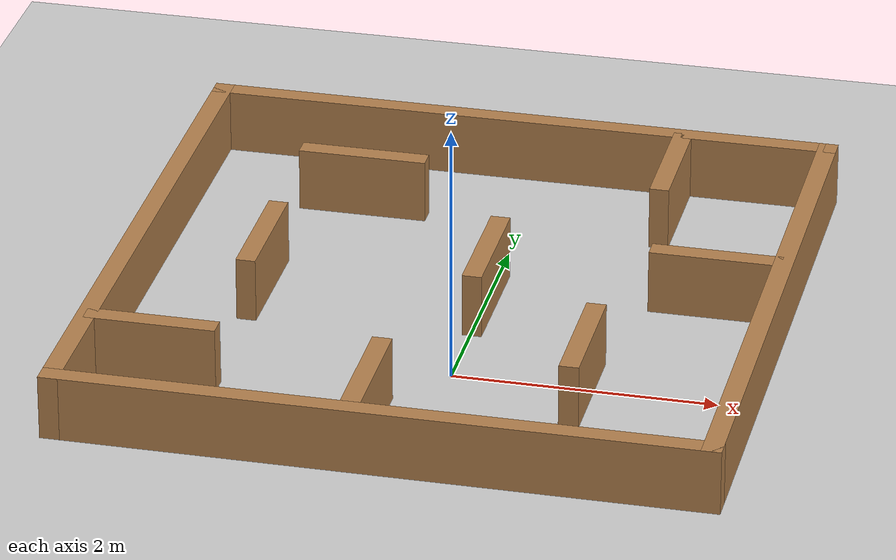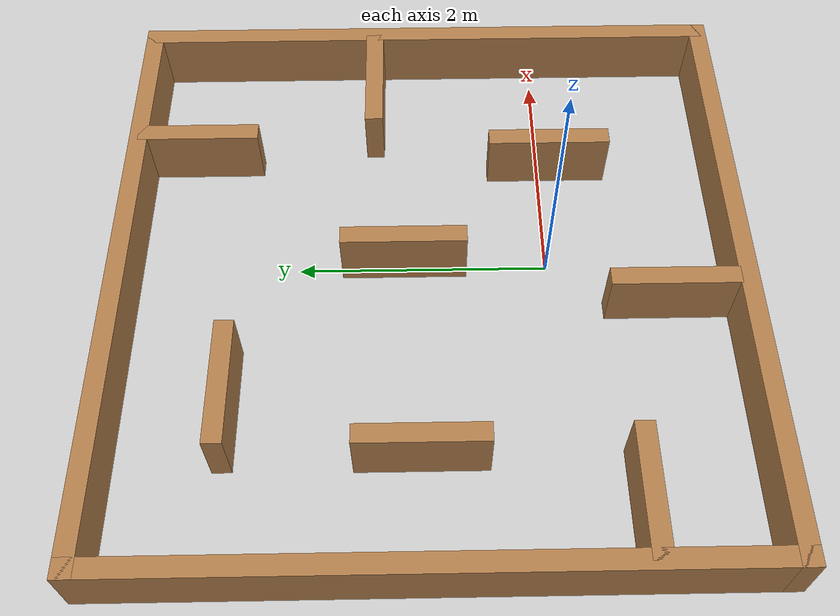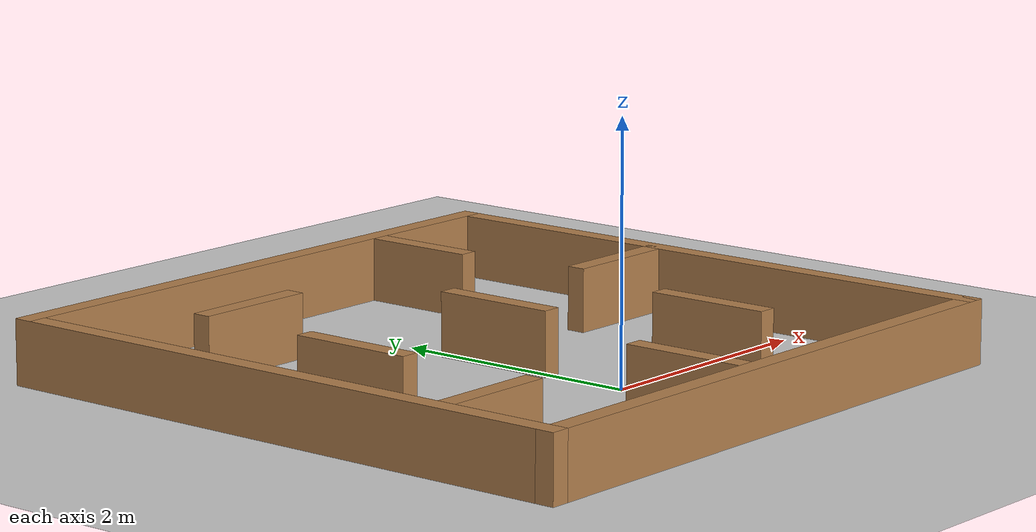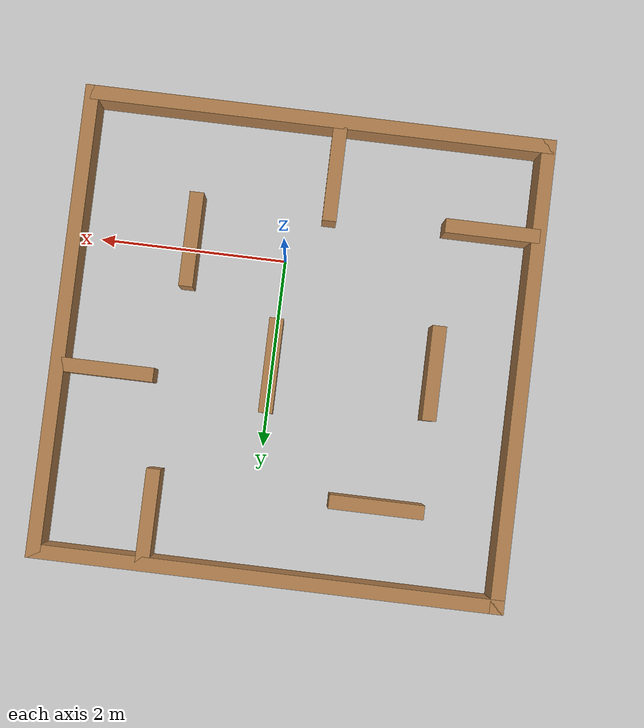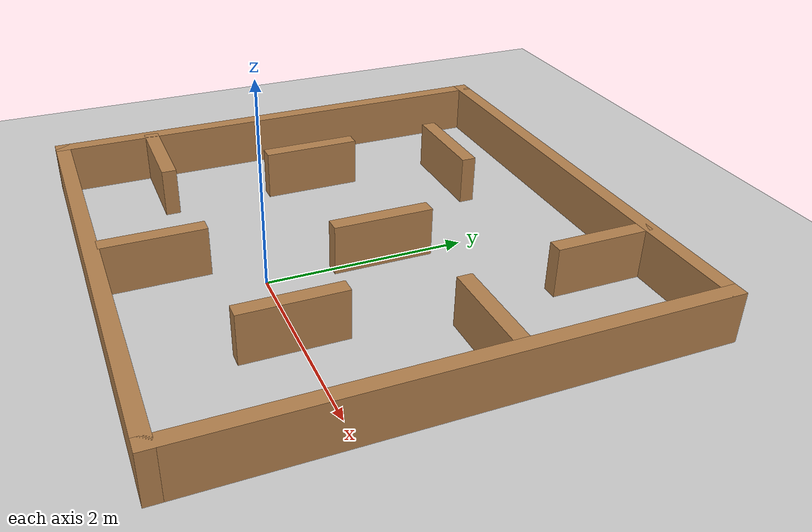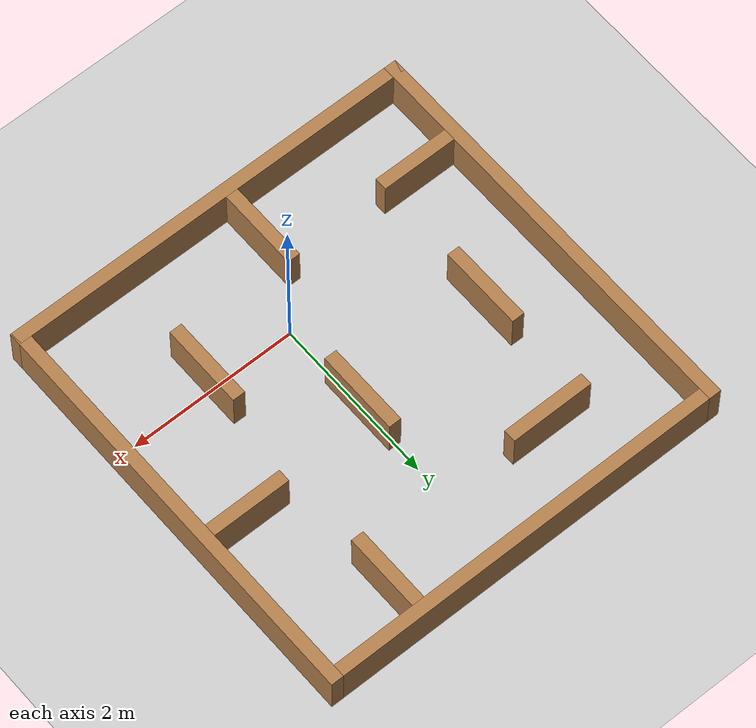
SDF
<sdf version="1.4">
 <world name="default">
  <scene><ambient>0.4 0.4 0.4 1</ambient><background>0.7 0.7 0.7 1</background><shadows>1</shadows></scene>
  <light name="sun" type="directional">
   <pose>0 0 10 0 -0 0</pose>
   <diffuse>0.8 0.8 0.8 1</diffuse>
   <specular>0.2 0.2 0.2 1</specular>
   <attenuation>
    <range>1000</range>
    <constant>0.9</constant>
    <linear>0.01</linear>
    <quadratic>0.001</quadratic>
   </attenuation>
   <direction>-0.5 0.1 -0.9</direction>
   <spot><inner_angle>0</inner_angle><outer_angle>0</outer_angle><falloff>0</falloff></spot>
  </light>
  <model name="ground_plane">
   <static>1</static>
   <link name="link">
    <collision name="collision">
     <geometry><plane><normal>0 0 1</normal><size>100 100</size></plane></geometry>
     <surface>
      <contact><collide_bitmask>65535</collide_bitmask></contact>
      <friction><ode><mu>100</mu><mu2>50</mu2></ode></friction>
     </surface>
    </collision>
    <visual name="visual">
     <cast_shadows>0</cast_shadows>
     <geometry><plane><normal>0 0 1</normal><size>100 100</size></plane></geometry>
     <material>
      <script><uri>file://media/materials/scripts/gazebo.material</uri><name>Gazebo/Grey</name></script>
     </material>
    </visual>
   </link>
  </model>
  <physics type="ode">
   <real_time_update_rate>1000</real_time_update_rate>
   <max_step_size>0.001</max_step_size>
   <real_time_factor>1</real_time_factor>
   <ode>
    <solver>
     <type>quick</type>
     <iters>150</iters>
     <precon_iters>0</precon_iters>
     <sor>1.4</sor>
     <use_dynamic_moi_rescaling>1</use_dynamic_moi_rescaling>
    </solver>
    <constraints>
     <cfm>1e-05</cfm>
     <erp>0.2</erp>
     <contact_max_correcting_vel>2000</contact_max_correcting_vel>
     <contact_surface_layer>0.01</contact_surface_layer>
    </constraints>
   </ode>
  </physics>
  <gravity>0 0 -9.8</gravity>
  <magnetic_field>6e-06 2.3e-05 -4.2e-05</magnetic_field>
  <atmosphere type="adiabatic"/>
  <spherical_coordinates>
   <surface_model>EARTH_WGS84</surface_model>
   <latitude_deg>0</latitude_deg>
   <longitude_deg>0</longitude_deg>
   <elevation>0</elevation>
   <heading_deg>0</heading_deg>
  </spherical_coordinates>
  <model name="turtlebot3_plaza">
   <pose>-0.194867 0.935405 0 0 -0 0</pose>
   <link name="Wall_0">
    <collision name="Wall_0_Collision">
     <geometry><box><size>5 0.15 0.5</size></box></geometry>
     <pose>0 0 0.25 0 -0 0</pose>
    </collision>
    <visual name="Wall_0_Visual">
     <pose>0 0 0.25 0 -0 0</pose>
     <geometry><box><size>5 0.15 0.5</size></box></geometry>
     <material>
      <script><uri>file://media/materials/scripts/gazebo.material</uri><name>Gazebo/Wood</name></script>
      <ambient>1 1 1 1</ambient>
     </material>
    </visual>
    <pose>-2.425 0 0 0 -0 1.5708</pose>
   </link>
   <link name="Wall_11">
    <collision name="Wall_11_Collision">
     <geometry><box><size>1 0.15 0.5</size></box></geometry>
     <pose>0 0 0.25 0 -0 0</pose>
    </collision>
    <visual name="Wall_11_Visual">
     <pose>0 0 0.25 0 -0 0</pose>
     <geometry><box><size>1 0.15 0.5</size></box></geometry>
     <material>
      <script><uri>file://media/materials/scripts/gazebo.material</uri><name>Gazebo/Wood</name></script>
      <ambient>1 1 1 1</ambient>
     </material>
    </visual>
    <pose>-1.937 -1.467 0 0 -0 0</pose>
   </link>
   <link name="Wall_13">
    <collision name="Wall_13_Collision">
     <geometry><box><size>1 0.15 0.5</size></box></geometry>
     <pose>0 0 0.25 0 -0 0</pose>
    </collision>
    <visual name="Wall_13_Visual">
     <pose>0 0 0.25 0 -0 0</pose>
     <geometry><box><size>1 0.15 0.5</size></box></geometry>
     <material>
      <script><uri>file://media/materials/scripts/gazebo.material</uri><name>Gazebo/Wood</name></script>
      <ambient>1 1 1 1</ambient>
     </material>
    </visual>
    <pose>-0.22 -1.866 0 0 0 -1.5708</pose>
   </link>
   <link name="Wall_15">
    <collision name="Wall_15_Collision">
     <geometry><box><size>1 0.15 0.5</size></box></geometry>
     <pose>0 0 0.25 0 -0 0</pose>
    </collision>
    <visual name="Wall_15_Visual">
     <pose>0 0 0.25 0 -0 0</pose>
     <geometry><box><size>1 0.15 0.5</size></box></geometry>
     <material>
      <script><uri>file://media/materials/scripts/gazebo.material</uri><name>Gazebo/Wood</name></script>
      <ambient>1 1 1 1</ambient>
     </material>
    </visual>
    <pose>1.195 -1.002 0 0 -0 1.5708</pose>
   </link>
   <link name="Wall_17">
    <collision name="Wall_17_Collision">
     <geometry><box><size>1 0.15 0.5</size></box></geometry>
     <pose>0 0 0.25 0 -0 0</pose>
    </collision>
    <visual name="Wall_17_Visual">
     <pose>0 0 0.25 0 -0 0</pose>
     <geometry><box><size>1 0.15 0.5</size></box></geometry>
     <material>
      <script><uri>file://media/materials/scripts/gazebo.material</uri><name>Gazebo/Wood</name></script>
      <ambient>1 1 1 1</ambient>
     </material>
    </visual>
    <pose>1.288 1.93 0 0 0 -1.5708</pose>
   </link>
   <link name="Wall_19">
    <collision name="Wall_19_Collision">
     <geometry><box><size>1 0.15 0.5</size></box></geometry>
     <pose>0 0 0.25 0 -0 0</pose>
    </collision>
    <visual name="Wall_19_Visual">
     <pose>0 0 0.25 0 -0 0</pose>
     <geometry><box><size>1 0.15 0.5</size></box></geometry>
     <material>
      <script><uri>file://media/materials/scripts/gazebo.material</uri><name>Gazebo/Wood</name></script>
      <ambient>1 1 1 1</ambient>
     </material>
    </visual>
    <pose>1.91128 0.4632 0 0 -0 0</pose>
   </link>
   <link name="Wall_2">
    <collision name="Wall_2_Collision">
     <geometry><box><size>5 0.15 0.5</size></box></geometry>
     <pose>0 0 0.25 0 -0 0</pose>
    </collision>
    <visual name="Wall_2_Visual">
     <pose>0 0 0.25 0 -0 0</pose>
     <geometry><box><size>5 0.15 0.5</size></box></geometry>
     <material>
      <script><uri>file://media/materials/scripts/gazebo.material</uri><name>Gazebo/Wood</name></script>
      <ambient>1 1 1 1</ambient>
     </material>
    </visual>
    <pose>0 2.425 0 0 -0 0</pose>
   </link>
   <link name="Wall_21">
    <collision name="Wall_21_Collision">
     <geometry><box><size>1 0.15 0.5</size></box></geometry>
     <pose>0 0 0.25 0 -0 0</pose>
    </collision>
    <visual name="Wall_21_Visual">
     <pose>0 0 0.25 0 -0 0</pose>
     <geometry><box><size>1 0.15 0.5</size></box></geometry>
     <material>
      <script><uri>file://media/materials/scripts/gazebo.material</uri><name>Gazebo/Wood</name></script>
      <ambient>1 1 1 1</ambient>
     </material>
    </visual>
    <pose>0.204 0.215 0 0 0 -1.5708</pose>
   </link>
   <link name="Wall_3">
    <collision name="Wall_3_Collision">
     <geometry><box><size>5 0.15 0.5</size></box></geometry>
     <pose>0 0 0.25 0 -0 0</pose>
    </collision>
    <visual name="Wall_3_Visual">
     <pose>0 0 0.25 0 -0 0</pose>
     <geometry><box><size>5 0.15 0.5</size></box></geometry>
     <material>
      <script><uri>file://media/materials/scripts/gazebo.material</uri><name>Gazebo/Wood</name></script>
      <ambient>1 1 1 1</ambient>
     </material>
    </visual>
    <pose>2.425 0 0 0 0 -1.5708</pose>
   </link>
   <link name="Wall_4">
    <collision name="Wall_4_Collision">
     <geometry><box><size>5 0.15 0.5</size></box></geometry>
     <pose>0 0 0.25 0 -0 0</pose>
    </collision>
    <visual name="Wall_4_Visual">
     <pose>0 0 0.25 0 -0 0</pose>
     <geometry><box><size>5 0.15 0.5</size></box></geometry>
     <material>
      <script><uri>file://media/materials/scripts/gazebo.material</uri><name>Gazebo/Wood</name></script>
      <ambient>1 1 1 1</ambient>
     </material>
    </visual>
    <pose>0 -2.425 0 0 -0 3.14159</pose>
   </link>
   <link name="Wall_7">
    <collision name="Wall_7_Collision">
     <geometry><box><size>1 0.15 0.5</size></box></geometry>
     <pose>0 0 0.25 0 -0 0</pose>
    </collision>
    <visual name="Wall_7_Visual">
     <pose>0 0 0.25 0 -0 0</pose>
     <geometry><box><size>1 0.15 0.5</size></box></geometry>
     <material>
      <script><uri>file://media/materials/scripts/gazebo.material</uri><name>Gazebo/Wood</name></script>
      <ambient>1 1 1 1</ambient>
     </material>
    </visual>
    <pose>-1.064 1.548 0 0 -0 0</pose>
   </link>
   <link name="Wall_9">
    <collision name="Wall_9_Collision">
     <geometry><box><size>1 0.15 0.5</size></box></geometry>
     <pose>0 0 0.25 0 -0 0</pose>
    </collision>
    <visual name="Wall_9_Visual">
     <pose>0 0 0.25 0 -0 0</pose>
     <geometry><box><size>1 0.15 0.5</size></box></geometry>
     <material>
      <script><uri>file://media/materials/scripts/gazebo.material</uri><name>Gazebo/Wood</name></script>
      <ambient>1 1 1 1</ambient>
     </material>
    </visual>
    <pose>-1.502 0.092 0 0 0 -1.5708</pose>
   </link>
   <static>1</static>
  </model>
 </world>
</sdf>
